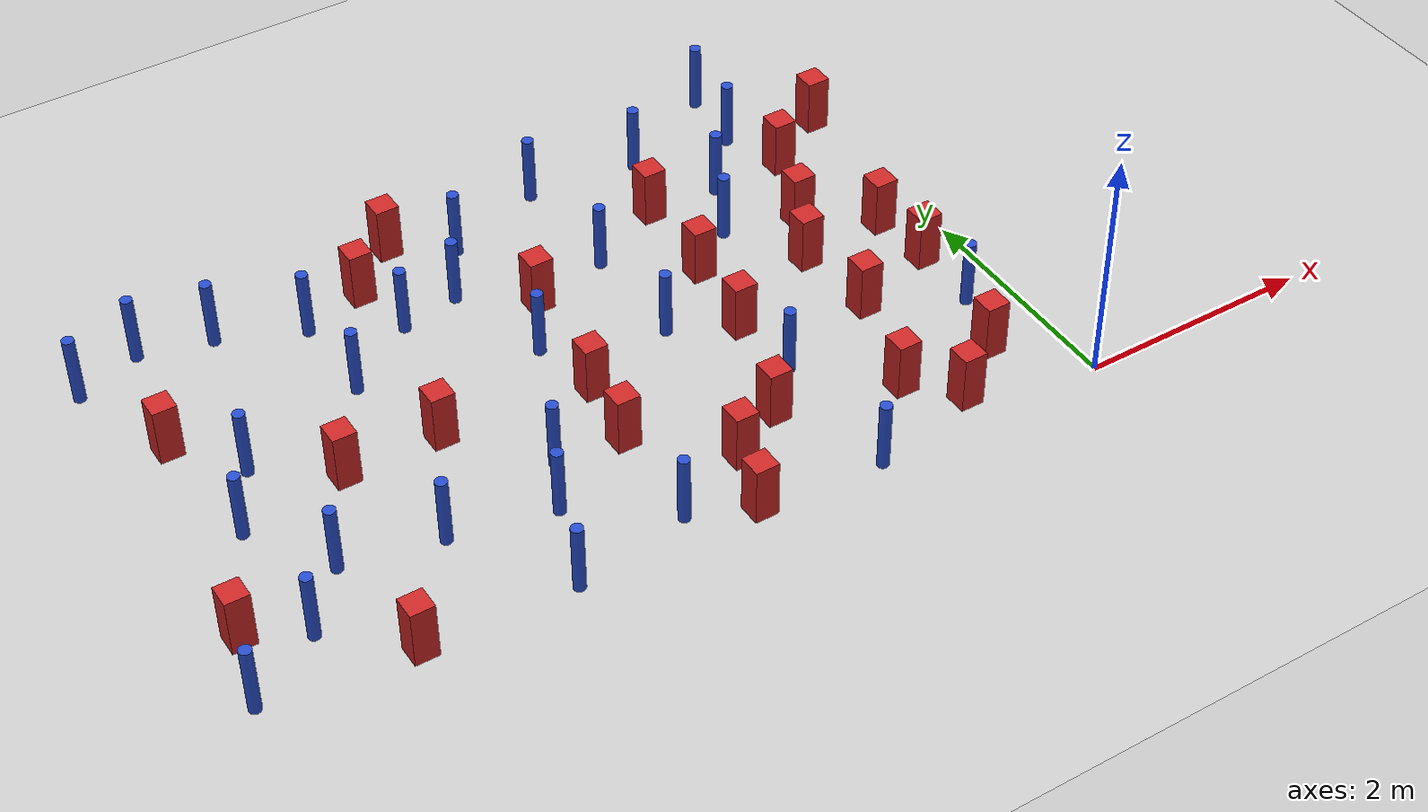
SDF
<sdf version="1.6">
 <world name="default">
  <model name="ground_plane">
   <static>1</static>
   <link name="link">
    <collision name="collision">
     <geometry><plane><normal>0 0 1</normal><size>100 100</size></plane></geometry>
     <surface><friction><ode><mu>100</mu><mu2>50</mu2></ode></friction></surface>
    </collision>
    <visual name="visual">
     <cast_shadows>0</cast_shadows>
     <geometry><plane><normal>0 0 1</normal><size>100 100</size></plane></geometry>
     <material>
      <ambient>1.0 1.0 1.0 1.0</ambient>
      <diffuse>0.8 0.8 0.8 1.0</diffuse>
      <specular>0.01 0.01 0.01 1.000000</specular>
     </material>
    </visual>
   </link>
  </model>
  <model name="pole_obstacle1">
   <static>true</static>
   <pose>-1.30578073557 3.44537643412 2.88873142074e-08 -9.90536689791e-09 4.6021994899e-07 -1.20965994959e-07</pose>
   <link name="link">
    <pose>0 0 0.3 0 -0 0</pose>
    <inertial>
     <mass>1</mass>
     <inertia><ixx>0.145833</ixx><ixy>0</ixy><ixz>0</ixz><iyy>0.145833</iyy><iyz>0</iyz><izz>0.125</izz></inertia>
    </inertial>
    <collision name="collision">
     <geometry><cylinder><radius>0.05</radius><length>.6</length></cylinder></geometry>
    </collision>
    <visual name="visual">
     <geometry><cylinder><radius>0.05</radius><length>.6</length></cylinder></geometry>
     <material>
      <script><name>Gazebo/Blue</name><uri>file://media/materials/scripts/gazebo.material</uri></script>
     </material>
    </visual>
   </link>
  </model>
  <model name="square_post_obstacle0">
   <static>true</static>
   <pose>-5.45927733952 2.02925295843 8.22691968438e-08 7.2212513382e-06 -7.54495500217e-07 2.29674213826e-05</pose>
   <link name="link">
    <pose>0 0 0.25 0 -0 0</pose>
    <inertial>
     <mass>100</mass>
     <inertia>
      <ixx>0.166667</ixx>
      <ixy>0</ixy>
      <ixz>0</ixz>
      <iyy>0.166667</iyy>
      <iyz>0</iyz>
      <izz>0.166667</izz>
     </inertia>
    </inertial>
    <collision name="collision"><geometry><box><size>.2 .2 .5</size></box></geometry></collision>
    <visual name="visual">
     <geometry><box><size>.2 .2 .5</size></box></geometry>
     <material>
      <script><name>Gazebo/Red</name><uri>file://media/materials/scripts/gazebo.material</uri></script>
     </material>
    </visual>
   </link>
  </model>
  <model name="pole_obstacle5">
   <static>true</static>
   <pose>-0.370727242179 1.18107586189 2.88873142074e-08 -9.90536689905e-09 4.60219948988e-07 -1.2096599496e-07</pose>
   <link name="link">
    <pose>0 0 0.3 0 -0 0</pose>
    <inertial>
     <mass>1</mass>
     <inertia><ixx>0.145833</ixx><ixy>0</ixy><ixz>0</ixz><iyy>0.145833</iyy><iyz>0</iyz><izz>0.125</izz></inertia>
    </inertial>
    <collision name="collision">
     <geometry><cylinder><radius>0.05</radius><length>.6</length></cylinder></geometry>
    </collision>
    <visual name="visual">
     <geometry><cylinder><radius>0.05</radius><length>.6</length></cylinder></geometry>
     <material>
      <script><name>Gazebo/Blue</name><uri>file://media/materials/scripts/gazebo.material</uri></script>
     </material>
    </visual>
   </link>
  </model>
  <model name="square_post_obstacle5">
   <static>true</static>
   <pose>-1.06678376096 0.254342762164 8.22691968438e-08 7.2212513382e-06 -7.54495500217e-07 2.29674213826e-05</pose>
   <link name="link">
    <pose>0 0 0.25 0 -0 0</pose>
    <inertial>
     <mass>100</mass>
     <inertia>
      <ixx>0.166667</ixx>
      <ixy>0</ixy>
      <ixz>0</ixz>
      <iyy>0.166667</iyy>
      <iyz>0</iyz>
      <izz>0.166667</izz>
     </inertia>
    </inertial>
    <collision name="collision"><geometry><box><size>.2 .2 .5</size></box></geometry></collision>
    <visual name="visual">
     <geometry><box><size>.2 .2 .5</size></box></geometry>
     <material>
      <script><name>Gazebo/Red</name><uri>file://media/materials/scripts/gazebo.material</uri></script>
     </material>
    </visual>
   </link>
  </model>
  <model name="square_post_obstacle7">
   <static>true</static>
   <pose>-2.40024444192 0.891105501859 8.22691968438e-08 7.2212513382e-06 -7.54495500217e-07 2.29674213826e-05</pose>
   <link name="link">
    <pose>0 0 0.25 0 -0 0</pose>
    <inertial>
     <mass>100</mass>
     <inertia>
      <ixx>0.166667</ixx>
      <ixy>0</ixy>
      <ixz>0</ixz>
      <iyy>0.166667</iyy>
      <iyz>0</iyz>
      <izz>0.166667</izz>
     </inertia>
    </inertial>
    <collision name="collision"><geometry><box><size>.2 .2 .5</size></box></geometry></collision>
    <visual name="visual">
     <geometry><box><size>.2 .2 .5</size></box></geometry>
     <material>
      <script><name>Gazebo/Red</name><uri>file://media/materials/scripts/gazebo.material</uri></script>
     </material>
    </visual>
   </link>
  </model>
  <model name="square_post_obstacle8">
   <static>true</static>
   <pose>-1.11404172992 1.54842886564 8.22691968438e-08 7.2212513382e-06 -7.54495500217e-07 2.29674213826e-05</pose>
   <link name="link">
    <pose>0 0 0.25 0 -0 0</pose>
    <inertial>
     <mass>100</mass>
     <inertia>
      <ixx>0.166667</ixx>
      <ixy>0</ixy>
      <ixz>0</ixz>
      <iyy>0.166667</iyy>
      <iyz>0</iyz>
      <izz>0.166667</izz>
     </inertia>
    </inertial>
    <collision name="collision"><geometry><box><size>.2 .2 .5</size></box></geometry></collision>
    <visual name="visual">
     <geometry><box><size>.2 .2 .5</size></box></geometry>
     <material>
      <script><name>Gazebo/Red</name><uri>file://media/materials/scripts/gazebo.material</uri></script>
     </material>
    </visual>
   </link>
  </model>
  <model name="square_post_obstacle9">
   <static>true</static>
   <pose>-3.42915403377 1.87004693417 8.22691968438e-08 7.2212513382e-06 -7.54495500217e-07 2.29674213826e-05</pose>
   <link name="link">
    <pose>0 0 0.25 0 -0 0</pose>
    <inertial>
     <mass>100</mass>
     <inertia>
      <ixx>0.166667</ixx>
      <ixy>0</ixy>
      <ixz>0</ixz>
      <iyy>0.166667</iyy>
      <iyz>0</iyz>
      <izz>0.166667</izz>
     </inertia>
    </inertial>
    <collision name="collision"><geometry><box><size>.2 .2 .5</size></box></geometry></collision>
    <visual name="visual">
     <geometry><box><size>.2 .2 .5</size></box></geometry>
     <material>
      <script><name>Gazebo/Red</name><uri>file://media/materials/scripts/gazebo.material</uri></script>
     </material>
    </visual>
   </link>
  </model>
  <model name="pole_obstacle21">
   <static>true</static>
   <pose>-0.859003942271 3.97160412737 2.88873142074e-08 -9.90536689658e-09 4.60219948993e-07 -1.20965994958e-07</pose>
   <link name="link">
    <pose>0 0 0.3 0 -0 0</pose>
    <inertial>
     <mass>1</mass>
     <inertia><ixx>0.145833</ixx><ixy>0</ixy><ixz>0</ixz><iyy>0.145833</iyy><iyz>0</iyz><izz>0.125</izz></inertia>
    </inertial>
    <collision name="collision">
     <geometry><cylinder><radius>0.05</radius><length>.6</length></cylinder></geometry>
    </collision>
    <visual name="visual">
     <geometry><cylinder><radius>0.05</radius><length>.6</length></cylinder></geometry>
     <material>
      <script><name>Gazebo/Blue</name><uri>file://media/materials/scripts/gazebo.material</uri></script>
     </material>
    </visual>
   </link>
  </model>
  <model name="square_post_obstacle25">
   <static>true</static>
   <pose>-3.04270230005 0.0989831111563 8.22691968438e-08 7.2212513382e-06 -7.54495500217e-07 2.29674213826e-05</pose>
   <link name="link">
    <pose>0 0 0.25 0 -0 0</pose>
    <inertial>
     <mass>100</mass>
     <inertia>
      <ixx>0.166667</ixx>
      <ixy>0</ixy>
      <ixz>0</ixz>
      <iyy>0.166667</iyy>
      <iyz>0</iyz>
      <izz>0.166667</izz>
     </inertia>
    </inertial>
    <collision name="collision"><geometry><box><size>.2 .2 .5</size></box></geometry></collision>
    <visual name="visual">
     <geometry><box><size>.2 .2 .5</size></box></geometry>
     <material>
      <script><name>Gazebo/Red</name><uri>file://media/materials/scripts/gazebo.material</uri></script>
     </material>
    </visual>
   </link>
  </model>
  <model name="square_post_obstacle27">
   <static>true</static>
   <pose>-1.98974504923 2.61625243071 8.22691968438e-08 7.2212513382e-06 -7.54495500217e-07 2.29674213826e-05</pose>
   <link name="link">
    <pose>0 0 0.25 0 -0 0</pose>
    <inertial>
     <mass>100</mass>
     <inertia>
      <ixx>0.166667</ixx>
      <ixy>0</ixy>
      <ixz>0</ixz>
      <iyy>0.166667</iyy>
      <iyz>0</iyz>
      <izz>0.166667</izz>
     </inertia>
    </inertial>
    <collision name="collision"><geometry><box><size>.2 .2 .5</size></box></geometry></collision>
    <visual name="visual">
     <geometry><box><size>.2 .2 .5</size></box></geometry>
     <material>
      <script><name>Gazebo/Red</name><uri>file://media/materials/scripts/gazebo.material</uri></script>
     </material>
    </visual>
   </link>
  </model>
  <model name="pole_obstacle43">
   <static>true</static>
   <pose>-4.95050751686 2.84360818125 2.88873142074e-08 -9.90536690245e-09 4.6021994898e-07 -1.20965994966e-07</pose>
   <link name="link">
    <pose>0 0 0.3 0 -0 0</pose>
    <inertial>
     <mass>1</mass>
     <inertia><ixx>0.145833</ixx><ixy>0</ixy><ixz>0</ixz><iyy>0.145833</iyy><iyz>0</iyz><izz>0.125</izz></inertia>
    </inertial>
    <collision name="collision">
     <geometry><cylinder><radius>0.05</radius><length>.6</length></cylinder></geometry>
    </collision>
    <visual name="visual">
     <geometry><cylinder><radius>0.05</radius><length>.6</length></cylinder></geometry>
     <material>
      <script><name>Gazebo/Blue</name><uri>file://media/materials/scripts/gazebo.material</uri></script>
     </material>
    </visual>
   </link>
  </model>
  <model name="pole_obstacle49">
   <static>true</static>
   <pose>-4.31367707946 3.28423936917 2.88873142074e-08 -9.90536690245e-09 4.6021994898e-07 -1.20965994966e-07</pose>
   <link name="link">
    <pose>0 0 0.3 0 -0 0</pose>
    <inertial>
     <mass>1</mass>
     <inertia><ixx>0.145833</ixx><ixy>0</ixy><ixz>0</ixz><iyy>0.145833</iyy><iyz>0</iyz><izz>0.125</izz></inertia>
    </inertial>
    <collision name="collision">
     <geometry><cylinder><radius>0.05</radius><length>.6</length></cylinder></geometry>
    </collision>
    <visual name="visual">
     <geometry><cylinder><radius>0.05</radius><length>.6</length></cylinder></geometry>
     <material>
      <script><name>Gazebo/Blue</name><uri>file://media/materials/scripts/gazebo.material</uri></script>
     </material>
    </visual>
   </link>
  </model>
  <model name="pole_obstacle60">
   <static>true</static>
   <pose>-4.54124681875 0.142570063461 2.88873142074e-08 -9.90536689234e-09 4.60219949004e-07 -1.20965994953e-07</pose>
   <link name="link">
    <pose>0 0 0.3 0 -0 0</pose>
    <inertial>
     <mass>1</mass>
     <inertia><ixx>0.145833</ixx><ixy>0</ixy><ixz>0</ixz><iyy>0.145833</iyy><iyz>0</iyz><izz>0.125</izz></inertia>
    </inertial>
    <collision name="collision">
     <geometry><cylinder><radius>0.05</radius><length>.6</length></cylinder></geometry>
    </collision>
    <visual name="visual">
     <geometry><cylinder><radius>0.05</radius><length>.6</length></cylinder></geometry>
     <material>
      <script><name>Gazebo/Blue</name><uri>file://media/materials/scripts/gazebo.material</uri></script>
     </material>
    </visual>
   </link>
  </model>
  <model name="pole_obstacle66">
   <static>true</static>
   <pose>-3.8066180767 3.38594326349 2.88873142074e-08 -9.90536690232e-09 4.6021994898e-07 -1.20965994968e-07</pose>
   <link name="link">
    <pose>0 0 0.3 0 -0 0</pose>
    <inertial>
     <mass>1</mass>
     <inertia><ixx>0.145833</ixx><ixy>0</ixy><ixz>0</ixz><iyy>0.145833</iyy><iyz>0</iyz><izz>0.125</izz></inertia>
    </inertial>
    <collision name="collision">
     <geometry><cylinder><radius>0.05</radius><length>.6</length></cylinder></geometry>
    </collision>
    <visual name="visual">
     <geometry><cylinder><radius>0.05</radius><length>.6</length></cylinder></geometry>
     <material>
      <script><name>Gazebo/Blue</name><uri>file://media/materials/scripts/gazebo.material</uri></script>
     </material>
    </visual>
   </link>
  </model>
  <model name="square_post_obstacle58">
   <static>true</static>
   <pose>-6.45309079142 2.99278116331 8.22691968438e-08 7.2212513382e-06 -7.54495500217e-07 2.29674213826e-05</pose>
   <link name="link">
    <pose>0 0 0.25 0 -0 0</pose>
    <inertial>
     <mass>100</mass>
     <inertia>
      <ixx>0.166667</ixx>
      <ixy>0</ixy>
      <ixz>0</ixz>
      <iyy>0.166667</iyy>
      <iyz>0</iyz>
      <izz>0.166667</izz>
     </inertia>
    </inertial>
    <collision name="collision"><geometry><box><size>.2 .2 .5</size></box></geometry></collision>
    <visual name="visual">
     <geometry><box><size>.2 .2 .5</size></box></geometry>
     <material>
      <script><name>Gazebo/Red</name><uri>file://media/materials/scripts/gazebo.material</uri></script>
     </material>
    </visual>
   </link>
  </model>
  <model name="pole_obstacle72">
   <static>true</static>
   <pose>-3.5535215193 0.324926998933 2.88873142074e-08 -9.90536689307e-09 4.60219949002e-07 -1.20965994954e-07</pose>
   <link name="link">
    <pose>0 0 0.3 0 -0 0</pose>
    <inertial>
     <mass>1</mass>
     <inertia><ixx>0.145833</ixx><ixy>0</ixy><ixz>0</ixz><iyy>0.145833</iyy><iyz>0</iyz><izz>0.125</izz></inertia>
    </inertial>
    <collision name="collision">
     <geometry><cylinder><radius>0.05</radius><length>.6</length></cylinder></geometry>
    </collision>
    <visual name="visual">
     <geometry><cylinder><radius>0.05</radius><length>.6</length></cylinder></geometry>
     <material>
      <script><name>Gazebo/Blue</name><uri>file://media/materials/scripts/gazebo.material</uri></script>
     </material>
    </visual>
   </link>
  </model>
  <model name="pole_obstacle79">
   <static>true</static>
   <pose>-2.65729067426 4.20846260707 2.88873142074e-08 -9.90536689859e-09 4.60219948989e-07 -1.20965994961e-07</pose>
   <link name="link">
    <pose>0 0 0.3 0 -0 0</pose>
    <inertial>
     <mass>1</mass>
     <inertia><ixx>0.145833</ixx><ixy>0</ixy><ixz>0</ixz><iyy>0.145833</iyy><iyz>0</iyz><izz>0.125</izz></inertia>
    </inertial>
    <collision name="collision">
     <geometry><cylinder><radius>0.05</radius><length>.6</length></cylinder></geometry>
    </collision>
    <visual name="visual">
     <geometry><cylinder><radius>0.05</radius><length>.6</length></cylinder></geometry>
     <material>
      <script><name>Gazebo/Blue</name><uri>file://media/materials/scripts/gazebo.material</uri></script>
     </material>
    </visual>
   </link>
  </model>
  <model name="square_post_obstacle67">
   <static>true</static>
   <pose>-5.77281265811 0.20421982376 8.22691968438e-08 7.22125133819e-06 -7.54495500217e-07 2.29674213826e-05</pose>
   <link name="link">
    <pose>0 0 0.25 0 -0 0</pose>
    <inertial>
     <mass>100</mass>
     <inertia>
      <ixx>0.166667</ixx>
      <ixy>0</ixy>
      <ixz>0</ixz>
      <iyy>0.166667</iyy>
      <iyz>0</iyz>
      <izz>0.166667</izz>
     </inertia>
    </inertial>
    <collision name="collision"><geometry><box><size>.2 .2 .5</size></box></geometry></collision>
    <visual name="visual">
     <geometry><box><size>.2 .2 .5</size></box></geometry>
     <material>
      <script><name>Gazebo/Red</name><uri>file://media/materials/scripts/gazebo.material</uri></script>
     </material>
    </visual>
   </link>
  </model>
  <model name="pole_obstacle81">
   <static>true</static>
   <pose>-1.71288899832 4.10052394245 2.88873142074e-08 -9.90536689852e-09 4.60219948989e-07 -1.2096599496e-07</pose>
   <link name="link">
    <pose>0 0 0.3 0 -0 0</pose>
    <inertial>
     <mass>1</mass>
     <inertia><ixx>0.145833</ixx><ixy>0</ixy><ixz>0</ixz><iyy>0.145833</iyy><iyz>0</iyz><izz>0.125</izz></inertia>
    </inertial>
    <collision name="collision">
     <geometry><cylinder><radius>0.05</radius><length>.6</length></cylinder></geometry>
    </collision>
    <visual name="visual">
     <geometry><cylinder><radius>0.05</radius><length>.6</length></cylinder></geometry>
     <material>
      <script><name>Gazebo/Blue</name><uri>file://media/materials/scripts/gazebo.material</uri></script>
     </material>
    </visual>
   </link>
  </model>
  <model name="square_post_obstacle72">
   <static>true</static>
   <pose>-0.940060309203 2.7585614647 8.22691968438e-08 7.2212513382e-06 -7.54495500217e-07 2.29674213826e-05</pose>
   <link name="link">
    <pose>0 0 0.25 0 -0 0</pose>
    <inertial>
     <mass>100</mass>
     <inertia>
      <ixx>0.166667</ixx>
      <ixy>0</ixy>
      <ixz>0</ixz>
      <iyy>0.166667</iyy>
      <iyz>0</iyz>
      <izz>0.166667</izz>
     </inertia>
    </inertial>
    <collision name="collision"><geometry><box><size>.2 .2 .5</size></box></geometry></collision>
    <visual name="visual">
     <geometry><box><size>.2 .2 .5</size></box></geometry>
     <material>
      <script><name>Gazebo/Red</name><uri>file://media/materials/scripts/gazebo.material</uri></script>
     </material>
    </visual>
   </link>
  </model>
  <model name="pole_obstacle89">
   <static>true</static>
   <pose>-6.34296323577 1.89454689351 2.88873142074e-08 -9.90536689445e-09 4.60219948999e-07 -1.20965994956e-07</pose>
   <link name="link">
    <pose>0 0 0.3 0 -0 0</pose>
    <inertial>
     <mass>1</mass>
     <inertia><ixx>0.145833</ixx><ixy>0</ixy><ixz>0</ixz><iyy>0.145833</iyy><iyz>0</iyz><izz>0.125</izz></inertia>
    </inertial>
    <collision name="collision">
     <geometry><cylinder><radius>0.05</radius><length>.6</length></cylinder></geometry>
    </collision>
    <visual name="visual">
     <geometry><cylinder><radius>0.05</radius><length>.6</length></cylinder></geometry>
     <material>
      <script><name>Gazebo/Blue</name><uri>file://media/materials/scripts/gazebo.material</uri></script>
     </material>
    </visual>
   </link>
  </model>
  <model name="pole_obstacle96">
   <static>true</static>
   <pose>-6.78967037376 3.89361855577 2.88873142074e-08 -9.90536690245e-09 4.6021994898e-07 -1.20965994966e-07</pose>
   <link name="link">
    <pose>0 0 0.3 0 -0 0</pose>
    <inertial>
     <mass>1</mass>
     <inertia><ixx>0.145833</ixx><ixy>0</ixy><ixz>0</ixz><iyy>0.145833</iyy><iyz>0</iyz><izz>0.125</izz></inertia>
    </inertial>
    <collision name="collision">
     <geometry><cylinder><radius>0.05</radius><length>.6</length></cylinder></geometry>
    </collision>
    <visual name="visual">
     <geometry><cylinder><radius>0.05</radius><length>.6</length></cylinder></geometry>
     <material>
      <script><name>Gazebo/Blue</name><uri>file://media/materials/scripts/gazebo.material</uri></script>
     </material>
    </visual>
   </link>
  </model>
  <model name="square_post_obstacle103">
   <static>true</static>
   <pose>-4.00159537531 4.21363573894 8.22691968438e-08 7.2212513382e-06 -7.54495500217e-07 2.29674213826e-05</pose>
   <link name="link">
    <pose>0 0 0.25 0 -0 0</pose>
    <inertial>
     <mass>100</mass>
     <inertia>
      <ixx>0.166667</ixx>
      <ixy>0</ixy>
      <ixz>0</ixz>
      <iyy>0.166667</iyy>
      <iyz>0</iyz>
      <izz>0.166667</izz>
     </inertia>
    </inertial>
    <collision name="collision"><geometry><box><size>.2 .2 .5</size></box></geometry></collision>
    <visual name="visual">
     <geometry><box><size>.2 .2 .5</size></box></geometry>
     <material>
      <script><name>Gazebo/Red</name><uri>file://media/materials/scripts/gazebo.material</uri></script>
     </material>
    </visual>
   </link>
  </model>
  <model name="pole_obstacle111">
   <static>true</static>
   <pose>-2.60729672001 3.13407928613 2.88873142074e-08 -9.90536690232e-09 4.6021994898e-07 -1.20965994968e-07</pose>
   <link name="link">
    <pose>0 0 0.3 0 -0 0</pose>
    <inertial>
     <mass>1</mass>
     <inertia><ixx>0.145833</ixx><ixy>0</ixy><ixz>0</ixz><iyy>0.145833</iyy><iyz>0</iyz><izz>0.125</izz></inertia>
    </inertial>
    <collision name="collision">
     <geometry><cylinder><radius>0.05</radius><length>.6</length></cylinder></geometry>
    </collision>
    <visual name="visual">
     <geometry><cylinder><radius>0.05</radius><length>.6</length></cylinder></geometry>
     <material>
      <script><name>Gazebo/Blue</name><uri>file://media/materials/scripts/gazebo.material</uri></script>
     </material>
    </visual>
   </link>
  </model>
  <model name="square_post_obstacle108">
   <static>true</static>
   <pose>-4.65865326575 2.01531116543 8.22691968438e-08 7.2212513382e-06 -7.54495500217e-07 2.29674213826e-05</pose>
   <link name="link">
    <pose>0 0 0.25 0 -0 0</pose>
    <inertial>
     <mass>100</mass>
     <inertia>
      <ixx>0.166667</ixx>
      <ixy>0</ixy>
      <ixz>0</ixz>
      <iyy>0.166667</iyy>
      <iyz>0</iyz>
      <izz>0.166667</izz>
     </inertia>
    </inertial>
    <collision name="collision"><geometry><box><size>.2 .2 .5</size></box></geometry></collision>
    <visual name="visual">
     <geometry><box><size>.2 .2 .5</size></box></geometry>
     <material>
      <script><name>Gazebo/Red</name><uri>file://media/materials/scripts/gazebo.material</uri></script>
     </material>
    </visual>
   </link>
  </model>
  <model name="pole_obstacle112">
   <static>true</static>
   <pose>-4.06595839799 1.32611564295 2.88873142074e-08 -9.90536689445e-09 4.60219948999e-07 -1.20965994956e-07</pose>
   <link name="link">
    <pose>0 0 0.3 0 -0 0</pose>
    <inertial>
     <mass>1</mass>
     <inertia><ixx>0.145833</ixx><ixy>0</ixy><ixz>0</ixz><iyy>0.145833</iyy><iyz>0</iyz><izz>0.125</izz></inertia>
    </inertial>
    <collision name="collision">
     <geometry><cylinder><radius>0.05</radius><length>.6</length></cylinder></geometry>
    </collision>
    <visual name="visual">
     <geometry><cylinder><radius>0.05</radius><length>.6</length></cylinder></geometry>
     <material>
      <script><name>Gazebo/Blue</name><uri>file://media/materials/scripts/gazebo.material</uri></script>
     </material>
    </visual>
   </link>
  </model>
  <model name="square_post_obstacle109">
   <static>true</static>
   <pose>-1.93652862798 3.47323306735 8.22691968438e-08 7.2212513382e-06 -7.54495500217e-07 2.29674213826e-05</pose>
   <link name="link">
    <pose>0 0 0.25 0 -0 0</pose>
    <inertial>
     <mass>100</mass>
     <inertia>
      <ixx>0.166667</ixx>
      <ixy>0</ixy>
      <ixz>0</ixz>
      <iyy>0.166667</iyy>
      <iyz>0</iyz>
      <izz>0.166667</izz>
     </inertia>
    </inertial>
    <collision name="collision"><geometry><box><size>.2 .2 .5</size></box></geometry></collision>
    <visual name="visual">
     <geometry><box><size>.2 .2 .5</size></box></geometry>
     <material>
      <script><name>Gazebo/Red</name><uri>file://media/materials/scripts/gazebo.material</uri></script>
     </material>
    </visual>
   </link>
  </model>
  <model name="pole_obstacle124">
   <static>true</static>
   <pose>-4.97251299291 3.65052580414 2.88873142074e-08 -9.90536690245e-09 4.6021994898e-07 -1.20965994966e-07</pose>
   <link name="link">
    <pose>0 0 0.3 0 -0 0</pose>
    <inertial>
     <mass>1</mass>
     <inertia><ixx>0.145833</ixx><ixy>0</ixy><ixz>0</ixz><iyy>0.145833</iyy><iyz>0</iyz><izz>0.125</izz></inertia>
    </inertial>
    <collision name="collision">
     <geometry><cylinder><radius>0.05</radius><length>.6</length></cylinder></geometry>
    </collision>
    <visual name="visual">
     <geometry><cylinder><radius>0.05</radius><length>.6</length></cylinder></geometry>
     <material>
      <script><name>Gazebo/Blue</name><uri>file://media/materials/scripts/gazebo.material</uri></script>
     </material>
    </visual>
   </link>
  </model>
  <model name="square_post_obstacle125">
   <static>true</static>
   <pose>-0.667329000561 3.45460955746 8.22691968438e-08 7.2212513382e-06 -7.54495500217e-07 2.29674213826e-05</pose>
   <link name="link">
    <pose>0 0 0.25 0 -0 0</pose>
    <inertial>
     <mass>100</mass>
     <inertia>
      <ixx>0.166667</ixx>
      <ixy>0</ixy>
      <ixz>0</ixz>
      <iyy>0.166667</iyy>
      <iyz>0</iyz>
      <izz>0.166667</izz>
     </inertia>
    </inertial>
    <collision name="collision"><geometry><box><size>.2 .2 .5</size></box></geometry></collision>
    <visual name="visual">
     <geometry><box><size>.2 .2 .5</size></box></geometry>
     <material>
      <script><name>Gazebo/Red</name><uri>file://media/materials/scripts/gazebo.material</uri></script>
     </material>
    </visual>
   </link>
  </model>
  <model name="pole_obstacle131">
   <static>true</static>
   <pose>-5.12336436981 1.05639315998 2.88873142074e-08 -9.90536689445e-09 4.60219948999e-07 -1.20965994956e-07</pose>
   <link name="link">
    <pose>0 0 0.3 0 -0 0</pose>
    <inertial>
     <mass>1</mass>
     <inertia><ixx>0.145833</ixx><ixy>0</ixy><ixz>0</ixz><iyy>0.145833</iyy><iyz>0</iyz><izz>0.125</izz></inertia>
    </inertial>
    <collision name="collision">
     <geometry><cylinder><radius>0.05</radius><length>.6</length></cylinder></geometry>
    </collision>
    <visual name="visual">
     <geometry><cylinder><radius>0.05</radius><length>.6</length></cylinder></geometry>
     <material>
      <script><name>Gazebo/Blue</name><uri>file://media/materials/scripts/gazebo.material</uri></script>
     </material>
    </visual>
   </link>
  </model>
  <model name="pole_obstacle132">
   <static>true</static>
   <pose>-2.00484085437 0.0113422166905 2.88873142074e-08 -9.90536689574e-09 4.60219948995e-07 -1.20965994957e-07</pose>
   <link name="link">
    <pose>0 0 0.3 0 -0 0</pose>
    <inertial>
     <mass>1</mass>
     <inertia><ixx>0.145833</ixx><ixy>0</ixy><ixz>0</ixz><iyy>0.145833</iyy><iyz>0</iyz><izz>0.125</izz></inertia>
    </inertial>
    <collision name="collision">
     <geometry><cylinder><radius>0.05</radius><length>.6</length></cylinder></geometry>
    </collision>
    <visual name="visual">
     <geometry><cylinder><radius>0.05</radius><length>.6</length></cylinder></geometry>
     <material>
      <script><name>Gazebo/Blue</name><uri>file://media/materials/scripts/gazebo.material</uri></script>
     </material>
    </visual>
   </link>
  </model>
  <model name="pole_obstacle134">
   <static>true</static>
   <pose>-4.28481561975 0.874181883851 2.88873142074e-08 -9.90536689837e-09 4.60219948989e-07 -1.2096599496e-07</pose>
   <link name="link">
    <pose>0 0 0.3 0 -0 0</pose>
    <inertial>
     <mass>1</mass>
     <inertia><ixx>0.145833</ixx><ixy>0</ixy><ixz>0</ixz><iyy>0.145833</iyy><iyz>0</iyz><izz>0.125</izz></inertia>
    </inertial>
    <collision name="collision">
     <geometry><cylinder><radius>0.05</radius><length>.6</length></cylinder></geometry>
    </collision>
    <visual name="visual">
     <geometry><cylinder><radius>0.05</radius><length>.6</length></cylinder></geometry>
     <material>
      <script><name>Gazebo/Blue</name><uri>file://media/materials/scripts/gazebo.material</uri></script>
     </material>
    </visual>
   </link>
  </model>
  <model name="pole_obstacle143">
   <static>true</static>
   <pose>-6.04213335891 2.46968425594 2.88873142074e-08 -9.90536690245e-09 4.6021994898e-07 -1.20965994966e-07</pose>
   <link name="link">
    <pose>0 0 0.3 0 -0 0</pose>
    <inertial>
     <mass>1</mass>
     <inertia><ixx>0.145833</ixx><ixy>0</ixy><ixz>0</ixz><iyy>0.145833</iyy><iyz>0</iyz><izz>0.125</izz></inertia>
    </inertial>
    <collision name="collision">
     <geometry><cylinder><radius>0.05</radius><length>.6</length></cylinder></geometry>
    </collision>
    <visual name="visual">
     <geometry><cylinder><radius>0.05</radius><length>.6</length></cylinder></geometry>
     <material>
      <script><name>Gazebo/Blue</name><uri>file://media/materials/scripts/gazebo.material</uri></script>
     </material>
    </visual>
   </link>
  </model>
  <model name="pole_obstacle144">
   <static>true</static>
   <pose>-6.33367651996 0.731423051938 2.88873142074e-08 -9.90536689837e-09 4.60219948989e-07 -1.2096599496e-07</pose>
   <link name="link">
    <pose>0 0 0.3 0 -0 0</pose>
    <inertial>
     <mass>1</mass>
     <inertia><ixx>0.145833</ixx><ixy>0</ixy><ixz>0</ixz><iyy>0.145833</iyy><iyz>0</iyz><izz>0.125</izz></inertia>
    </inertial>
    <collision name="collision">
     <geometry><cylinder><radius>0.05</radius><length>.6</length></cylinder></geometry>
    </collision>
    <visual name="visual">
     <geometry><cylinder><radius>0.05</radius><length>.6</length></cylinder></geometry>
     <material>
      <script><name>Gazebo/Blue</name><uri>file://media/materials/scripts/gazebo.material</uri></script>
     </material>
    </visual>
   </link>
  </model>
  <model name="square_post_obstacle144">
   <static>true</static>
   <pose>-6.79085495125 0.974706077012 8.22691968438e-08 7.2212513382e-06 -7.54495500217e-07 2.29674213826e-05</pose>
   <link name="link">
    <pose>0 0 0.25 0 -0 0</pose>
    <inertial>
     <mass>100</mass>
     <inertia>
      <ixx>0.166667</ixx>
      <ixy>0</ixy>
      <ixz>0</ixz>
      <iyy>0.166667</iyy>
      <iyz>0</iyz>
      <izz>0.166667</izz>
     </inertia>
    </inertial>
    <collision name="collision"><geometry><box><size>.2 .2 .5</size></box></geometry></collision>
    <visual name="visual">
     <geometry><box><size>.2 .2 .5</size></box></geometry>
     <material>
      <script><name>Gazebo/Red</name><uri>file://media/materials/scripts/gazebo.material</uri></script>
     </material>
    </visual>
   </link>
  </model>
  <model name="square_post_obstacle146">
   <static>true</static>
   <pose>-2.86769551476 0.63357955848 8.22691968438e-08 7.2212513382e-06 -7.54495500217e-07 2.29674213826e-05</pose>
   <link name="link">
    <pose>0 0 0.25 0 -0 0</pose>
    <inertial>
     <mass>100</mass>
     <inertia>
      <ixx>0.166667</ixx>
      <ixy>0</ixy>
      <ixz>0</ixz>
      <iyy>0.166667</iyy>
      <iyz>0</iyz>
      <izz>0.166667</izz>
     </inertia>
    </inertial>
    <collision name="collision"><geometry><box><size>.2 .2 .5</size></box></geometry></collision>
    <visual name="visual">
     <geometry><box><size>.2 .2 .5</size></box></geometry>
     <material>
      <script><name>Gazebo/Red</name><uri>file://media/materials/scripts/gazebo.material</uri></script>
     </material>
    </visual>
   </link>
  </model>
  <model name="pole_obstacle160">
   <static>true</static>
   <pose>-6.2357864591 4.09782868338 2.88873142074e-08 -9.90536690842e-09 4.60219948965e-07 -1.20965994976e-07</pose>
   <link name="link">
    <pose>0 0 0.3 0 -0 0</pose>
    <inertial>
     <mass>1</mass>
     <inertia><ixx>0.145833</ixx><ixy>0</ixy><ixz>0</ixz><iyy>0.145833</iyy><iyz>0</iyz><izz>0.125</izz></inertia>
    </inertial>
    <collision name="collision">
     <geometry><cylinder><radius>0.05</radius><length>.6</length></cylinder></geometry>
    </collision>
    <visual name="visual">
     <geometry><cylinder><radius>0.05</radius><length>.6</length></cylinder></geometry>
     <material>
      <script><name>Gazebo/Blue</name><uri>file://media/materials/scripts/gazebo.material</uri></script>
     </material>
    </visual>
   </link>
  </model>
  <model name="pole_obstacle162">
   <static>true</static>
   <pose>-2.59124215095 2.14747115374 2.88873142074e-08 -9.90536690232e-09 4.6021994898e-07 -1.20965994968e-07</pose>
   <link name="link">
    <pose>0 0 0.3 0 -0 0</pose>
    <inertial>
     <mass>1</mass>
     <inertia><ixx>0.145833</ixx><ixy>0</ixy><ixz>0</ixz><iyy>0.145833</iyy><iyz>0</iyz><izz>0.125</izz></inertia>
    </inertial>
    <collision name="collision">
     <geometry><cylinder><radius>0.05</radius><length>.6</length></cylinder></geometry>
    </collision>
    <visual name="visual">
     <geometry><cylinder><radius>0.05</radius><length>.6</length></cylinder></geometry>
     <material>
      <script><name>Gazebo/Blue</name><uri>file://media/materials/scripts/gazebo.material</uri></script>
     </material>
    </visual>
   </link>
  </model>
  <model name="square_post_obstacle154">
   <static>true</static>
   <pose>-0.364420479857 1.79688065877 8.22691968438e-08 7.2212513382e-06 -7.54495500217e-07 2.29674213826e-05</pose>
   <link name="link">
    <pose>0 0 0.25 0 -0 0</pose>
    <inertial>
     <mass>100</mass>
     <inertia>
      <ixx>0.166667</ixx>
      <ixy>0</ixy>
      <ixz>0</ixz>
      <iyy>0.166667</iyy>
      <iyz>0</iyz>
      <izz>0.166667</izz>
     </inertia>
    </inertial>
    <collision name="collision"><geometry><box><size>.2 .2 .5</size></box></geometry></collision>
    <visual name="visual">
     <geometry><box><size>.2 .2 .5</size></box></geometry>
     <material>
      <script><name>Gazebo/Red</name><uri>file://media/materials/scripts/gazebo.material</uri></script>
     </material>
    </visual>
   </link>
  </model>
  <model name="pole_obstacle168">
   <static>true</static>
   <pose>-2.01586294273 1.26398256914 2.88873142074e-08 -9.90536690028e-09 4.60219948985e-07 -1.20965994963e-07</pose>
   <link name="link">
    <pose>0 0 0.3 0 -0 0</pose>
    <inertial>
     <mass>1</mass>
     <inertia><ixx>0.145833</ixx><ixy>0</ixy><ixz>0</ixz><iyy>0.145833</iyy><iyz>0</iyz><izz>0.125</izz></inertia>
    </inertial>
    <collision name="collision">
     <geometry><cylinder><radius>0.05</radius><length>.6</length></cylinder></geometry>
    </collision>
    <visual name="visual">
     <geometry><cylinder><radius>0.05</radius><length>.6</length></cylinder></geometry>
     <material>
      <script><name>Gazebo/Blue</name><uri>file://media/materials/scripts/gazebo.material</uri></script>
     </material>
    </visual>
   </link>
  </model>
  <model name="pole_obstacle178">
   <static>true</static>
   <pose>-3.51746894847 3.90374215136 2.88873142074e-08 -9.90536689597e-09 4.60219948995e-07 -1.20965994957e-07</pose>
   <link name="link">
    <pose>0 0 0.3 0 -0 0</pose>
    <inertial>
     <mass>1</mass>
     <inertia><ixx>0.145833</ixx><ixy>0</ixy><ixz>0</ixz><iyy>0.145833</iyy><iyz>0</iyz><izz>0.125</izz></inertia>
    </inertial>
    <collision name="collision">
     <geometry><cylinder><radius>0.05</radius><length>.6</length></cylinder></geometry>
    </collision>
    <visual name="visual">
     <geometry><cylinder><radius>0.05</radius><length>.6</length></cylinder></geometry>
     <material>
      <script><name>Gazebo/Blue</name><uri>file://media/materials/scripts/gazebo.material</uri></script>
     </material>
    </visual>
   </link>
  </model>
  <model name="square_post_obstacle176">
   <static>true</static>
   <pose>-2.08547577378 1.86627240179 8.22691968438e-08 7.2212513382e-06 -7.54495500217e-07 2.29674213826e-05</pose>
   <link name="link">
    <pose>0 0 0.25 0 -0 0</pose>
    <inertial>
     <mass>100</mass>
     <inertia>
      <ixx>0.166667</ixx>
      <ixy>0</ixy>
      <ixz>0</ixz>
      <iyy>0.166667</iyy>
      <iyz>0</iyz>
      <izz>0.166667</izz>
     </inertia>
    </inertial>
    <collision name="collision"><geometry><box><size>.2 .2 .5</size></box></geometry></collision>
    <visual name="visual">
     <geometry><box><size>.2 .2 .5</size></box></geometry>
     <material>
      <script><name>Gazebo/Red</name><uri>file://media/materials/scripts/gazebo.material</uri></script>
     </material>
    </visual>
   </link>
  </model>
  <model name="pole_obstacle180">
   <static>true</static>
   <pose>-0.79869057881 4.5771536231 2.88873142074e-08 -9.90536689661e-09 4.60219948993e-07 -1.20965994957e-07</pose>
   <link name="link">
    <pose>0 0 0.3 0 -0 0</pose>
    <inertial>
     <mass>1</mass>
     <inertia><ixx>0.145833</ixx><ixy>0</ixy><ixz>0</ixz><iyy>0.145833</iyy><iyz>0</iyz><izz>0.125</izz></inertia>
    </inertial>
    <collision name="collision">
     <geometry><cylinder><radius>0.05</radius><length>.6</length></cylinder></geometry>
    </collision>
    <visual name="visual">
     <geometry><cylinder><radius>0.05</radius><length>.6</length></cylinder></geometry>
     <material>
      <script><name>Gazebo/Blue</name><uri>file://media/materials/scripts/gazebo.material</uri></script>
     </material>
    </visual>
   </link>
  </model>
  <model name="pole_obstacle186">
   <static>true</static>
   <pose>-5.91767455034 1.22334831911 2.88873142074e-08 -9.90536689445e-09 4.60219948999e-07 -1.20965994956e-07</pose>
   <link name="link">
    <pose>0 0 0.3 0 -0 0</pose>
    <inertial>
     <mass>1</mass>
     <inertia><ixx>0.145833</ixx><ixy>0</ixy><ixz>0</ixz><iyy>0.145833</iyy><iyz>0</iyz><izz>0.125</izz></inertia>
    </inertial>
    <collision name="collision">
     <geometry><cylinder><radius>0.05</radius><length>.6</length></cylinder></geometry>
    </collision>
    <visual name="visual">
     <geometry><cylinder><radius>0.05</radius><length>.6</length></cylinder></geometry>
     <material>
      <script><name>Gazebo/Blue</name><uri>file://media/materials/scripts/gazebo.material</uri></script>
     </material>
    </visual>
   </link>
  </model>
  <model name="square_post_obstacle187">
   <static>true</static>
   <pose>-0.410094638242 2.34838423544 8.22691968438e-08 7.2212513382e-06 -7.54495500217e-07 2.29674213826e-05</pose>
   <link name="link">
    <pose>0 0 0.25 0 -0 0</pose>
    <inertial>
     <mass>100</mass>
     <inertia>
      <ixx>0.166667</ixx>
      <ixy>0</ixy>
      <ixz>0</ixz>
      <iyy>0.166667</iyy>
      <iyz>0</iyz>
      <izz>0.166667</izz>
     </inertia>
    </inertial>
    <collision name="collision"><geometry><box><size>.2 .2 .5</size></box></geometry></collision>
    <visual name="visual">
     <geometry><box><size>.2 .2 .5</size></box></geometry>
     <material>
      <script><name>Gazebo/Red</name><uri>file://media/materials/scripts/gazebo.material</uri></script>
     </material>
    </visual>
   </link>
  </model>
  <model name="square_post_obstacle188">
   <static>true</static>
   <pose>-1.17956869223 2.28240636841 8.22691968438e-08 7.2212513382e-06 -7.54495500217e-07 2.29674213826e-05</pose>
   <link name="link">
    <pose>0 0 0.25 0 -0 0</pose>
    <inertial>
     <mass>100</mass>
     <inertia>
      <ixx>0.166667</ixx>
      <ixy>0</ixy>
      <ixz>0</ixz>
      <iyy>0.166667</iyy>
      <iyz>0</iyz>
      <izz>0.166667</izz>
     </inertia>
    </inertial>
    <collision name="collision"><geometry><box><size>.2 .2 .5</size></box></geometry></collision>
    <visual name="visual">
     <geometry><box><size>.2 .2 .5</size></box></geometry>
     <material>
      <script><name>Gazebo/Red</name><uri>file://media/materials/scripts/gazebo.material</uri></script>
     </material>
    </visual>
   </link>
  </model>
  <model name="square_post_obstacle194">
   <static>true</static>
   <pose>-3.5144227324 1.25439942783 8.22691968438e-08 7.2212513382e-06 -7.54495500217e-07 2.29674213826e-05</pose>
   <link name="link">
    <pose>0 0 0.25 0 -0 0</pose>
    <inertial>
     <mass>100</mass>
     <inertia>
      <ixx>0.166667</ixx>
      <ixy>0</ixy>
      <ixz>0</ixz>
      <iyy>0.166667</iyy>
      <iyz>0</iyz>
      <izz>0.166667</izz>
     </inertia>
    </inertial>
    <collision name="collision"><geometry><box><size>.2 .2 .5</size></box></geometry></collision>
    <visual name="visual">
     <geometry><box><size>.2 .2 .5</size></box></geometry>
     <material>
      <script><name>Gazebo/Red</name><uri>file://media/materials/scripts/gazebo.material</uri></script>
     </material>
    </visual>
   </link>
  </model>
  <model name="square_post_obstacle204">
   <static>true</static>
   <pose>-0.566019432621 0.632210675978 8.22691968438e-08 7.2212513382e-06 -7.54495500217e-07 2.29674213826e-05</pose>
   <link name="link">
    <pose>0 0 0.25 0 -0 0</pose>
    <inertial>
     <mass>100</mass>
     <inertia>
      <ixx>0.166667</ixx>
      <ixy>0</ixy>
      <ixz>0</ixz>
      <iyy>0.166667</iyy>
      <iyz>0</iyz>
      <izz>0.166667</izz>
     </inertia>
    </inertial>
    <collision name="collision"><geometry><box><size>.2 .2 .5</size></box></geometry></collision>
    <visual name="visual">
     <geometry><box><size>.2 .2 .5</size></box></geometry>
     <material>
      <script><name>Gazebo/Red</name><uri>file://media/materials/scripts/gazebo.material</uri></script>
     </material>
    </visual>
   </link>
  </model>
  <model name="pole_obstacle196">
   <static>true</static>
   <pose>-6.96294348408 0.347614184679 2.88873142074e-08 -9.90536689981e-09 4.60219948986e-07 -1.20965994962e-07</pose>
   <link name="link">
    <pose>0 0 0.3 0 -0 0</pose>
    <inertial>
     <mass>1</mass>
     <inertia><ixx>0.145833</ixx><ixy>0</ixy><ixz>0</ixz><iyy>0.145833</iyy><iyz>0</iyz><izz>0.125</izz></inertia>
    </inertial>
    <collision name="collision">
     <geometry><cylinder><radius>0.05</radius><length>.6</length></cylinder></geometry>
    </collision>
    <visual name="visual">
     <geometry><cylinder><radius>0.05</radius><length>.6</length></cylinder></geometry>
     <material>
      <script><name>Gazebo/Blue</name><uri>file://media/materials/scripts/gazebo.material</uri></script>
     </material>
    </visual>
   </link>
  </model>
  <model name="pole_obstacle200">
   <static>true</static>
   <pose>-1.55480167137 2.93041751278 2.88873142074e-08 -9.90536689791e-09 4.6021994899e-07 -1.20965994959e-07</pose>
   <link name="link">
    <pose>0 0 0.3 0 -0 0</pose>
    <inertial>
     <mass>1</mass>
     <inertia><ixx>0.145833</ixx><ixy>0</ixy><ixz>0</ixz><iyy>0.145833</iyy><iyz>0</iyz><izz>0.125</izz></inertia>
    </inertial>
    <collision name="collision">
     <geometry><cylinder><radius>0.05</radius><length>.6</length></cylinder></geometry>
    </collision>
    <visual name="visual">
     <geometry><cylinder><radius>0.05</radius><length>.6</length></cylinder></geometry>
     <material>
      <script><name>Gazebo/Blue</name><uri>file://media/materials/scripts/gazebo.material</uri></script>
     </material>
    </visual>
   </link>
  </model>
  <model name="pole_obstacle205">
   <static>true</static>
   <pose>-5.64963702423 3.94367370749 2.88873142074e-08 -9.90536690245e-09 4.6021994898e-07 -1.20965994966e-07</pose>
   <link name="link">
    <pose>0 0 0.3 0 -0 0</pose>
    <inertial>
     <mass>1</mass>
     <inertia><ixx>0.145833</ixx><ixy>0</ixy><ixz>0</ixz><iyy>0.145833</iyy><iyz>0</iyz><izz>0.125</izz></inertia>
    </inertial>
    <collision name="collision">
     <geometry><cylinder><radius>0.05</radius><length>.6</length></cylinder></geometry>
    </collision>
    <visual name="visual">
     <geometry><cylinder><radius>0.05</radius><length>.6</length></cylinder></geometry>
     <material>
      <script><name>Gazebo/Blue</name><uri>file://media/materials/scripts/gazebo.material</uri></script>
     </material>
    </visual>
   </link>
  </model>
  <model name="pole_obstacle206">
   <static>true</static>
   <pose>-3.54396815771 2.47911635831 2.88873142074e-08 -9.90536689597e-09 4.60219948995e-07 -1.20965994957e-07</pose>
   <link name="link">
    <pose>0 0 0.3 0 -0 0</pose>
    <inertial>
     <mass>1</mass>
     <inertia><ixx>0.145833</ixx><ixy>0</ixy><ixz>0</ixz><iyy>0.145833</iyy><iyz>0</iyz><izz>0.125</izz></inertia>
    </inertial>
    <collision name="collision">
     <geometry><cylinder><radius>0.05</radius><length>.6</length></cylinder></geometry>
    </collision>
    <visual name="visual">
     <geometry><cylinder><radius>0.05</radius><length>.6</length></cylinder></geometry>
     <material>
      <script><name>Gazebo/Blue</name><uri>file://media/materials/scripts/gazebo.material</uri></script>
     </material>
    </visual>
   </link>
  </model>
  <model name="square_post_obstacle208">
   <static>true</static>
   <pose>-1.39856359923 0.633067215363 8.22691968438e-08 7.2212513382e-06 -7.54495500217e-07 2.29674213826e-05</pose>
   <link name="link">
    <pose>0 0 0.25 0 -0 0</pose>
    <inertial>
     <mass>100</mass>
     <inertia>
      <ixx>0.166667</ixx>
      <ixy>0</ixy>
      <ixz>0</ixz>
      <iyy>0.166667</iyy>
      <iyz>0</iyz>
      <izz>0.166667</izz>
     </inertia>
    </inertial>
    <collision name="collision"><geometry><box><size>.2 .2 .5</size></box></geometry></collision>
    <visual name="visual">
     <geometry><box><size>.2 .2 .5</size></box></geometry>
     <material>
      <script><name>Gazebo/Red</name><uri>file://media/materials/scripts/gazebo.material</uri></script>
     </material>
    </visual>
   </link>
  </model>
  <model name="square_post_obstacle227">
   <static>true</static>
   <pose>-4.43881996738 3.81620996466 8.22691968438e-08 7.2212513382e-06 -7.54495500217e-07 2.29674213826e-05</pose>
   <link name="link">
    <pose>0 0 0.25 0 -0 0</pose>
    <inertial>
     <mass>100</mass>
     <inertia>
      <ixx>0.166667</ixx>
      <ixy>0</ixy>
      <ixz>0</ixz>
      <iyy>0.166667</iyy>
      <iyz>0</iyz>
      <izz>0.166667</izz>
     </inertia>
    </inertial>
    <collision name="collision"><geometry><box><size>.2 .2 .5</size></box></geometry></collision>
    <visual name="visual">
     <geometry><box><size>.2 .2 .5</size></box></geometry>
     <material>
      <script><name>Gazebo/Red</name><uri>file://media/materials/scripts/gazebo.material</uri></script>
     </material>
    </visual>
   </link>
  </model>
  <model name="square_post_obstacle229">
   <static>true</static>
   <pose>-0.0989339673784 3.80290996466 8.22691968438e-08 7.2212513382e-06 -7.54495500217e-07 2.29674213826e-05</pose>
   <link name="link">
    <pose>0 0 0.25 0 -0 0</pose>
    <inertial>
     <mass>100</mass>
     <inertia>
      <ixx>0.166667</ixx>
      <ixy>0</ixy>
      <ixz>0</ixz>
      <iyy>0.166667</iyy>
      <iyz>0</iyz>
      <izz>0.166667</izz>
     </inertia>
    </inertial>
    <collision name="collision"><geometry><box><size>.2 .2 .5</size></box></geometry></collision>
    <visual name="visual">
     <geometry><box><size>.2 .2 .5</size></box></geometry>
     <material>
      <script><name>Gazebo/Red</name><uri>file://media/materials/scripts/gazebo.material</uri></script>
     </material>
    </visual>
   </link>
  </model>
  <model name="square_post_obstacle230">
   <static>true</static>
   <pose>-3.27738996738 2.97955996466 8.22691968438e-08 7.2212513382e-06 -7.54495500217e-07 2.29674213826e-05</pose>
   <link name="link">
    <pose>0 0 0.25 0 -0 0</pose>
    <inertial>
     <mass>100</mass>
     <inertia>
      <ixx>0.166667</ixx>
      <ixy>0</ixy>
      <ixz>0</ixz>
      <iyy>0.166667</iyy>
      <iyz>0</iyz>
      <izz>0.166667</izz>
     </inertia>
    </inertial>
    <collision name="collision"><geometry><box><size>.2 .2 .5</size></box></geometry></collision>
    <visual name="visual">
     <geometry><box><size>.2 .2 .5</size></box></geometry>
     <material>
      <script><name>Gazebo/Red</name><uri>file://media/materials/scripts/gazebo.material</uri></script>
     </material>
    </visual>
   </link>
  </model>
 </world>
</sdf>
